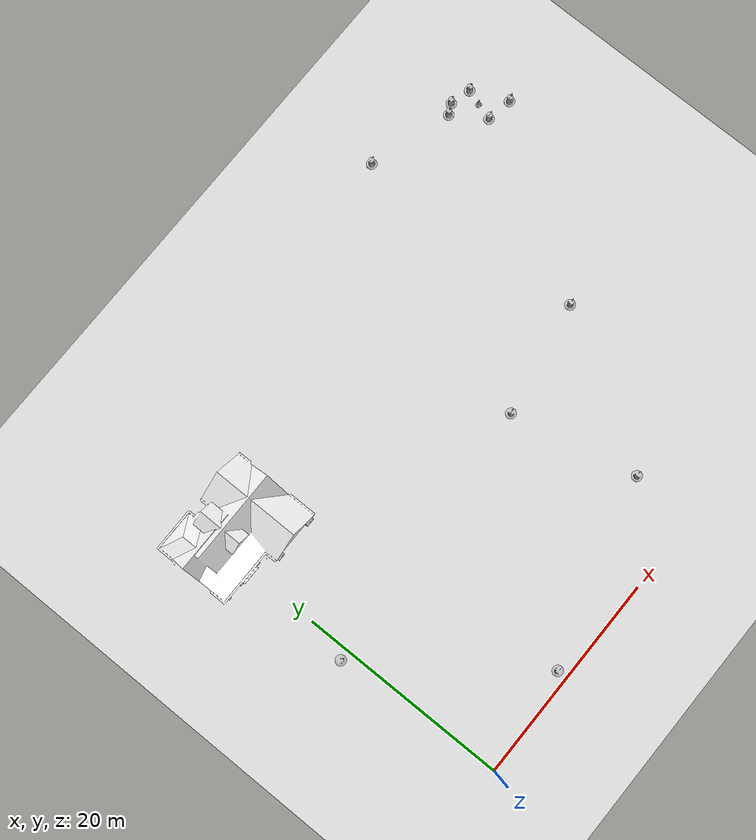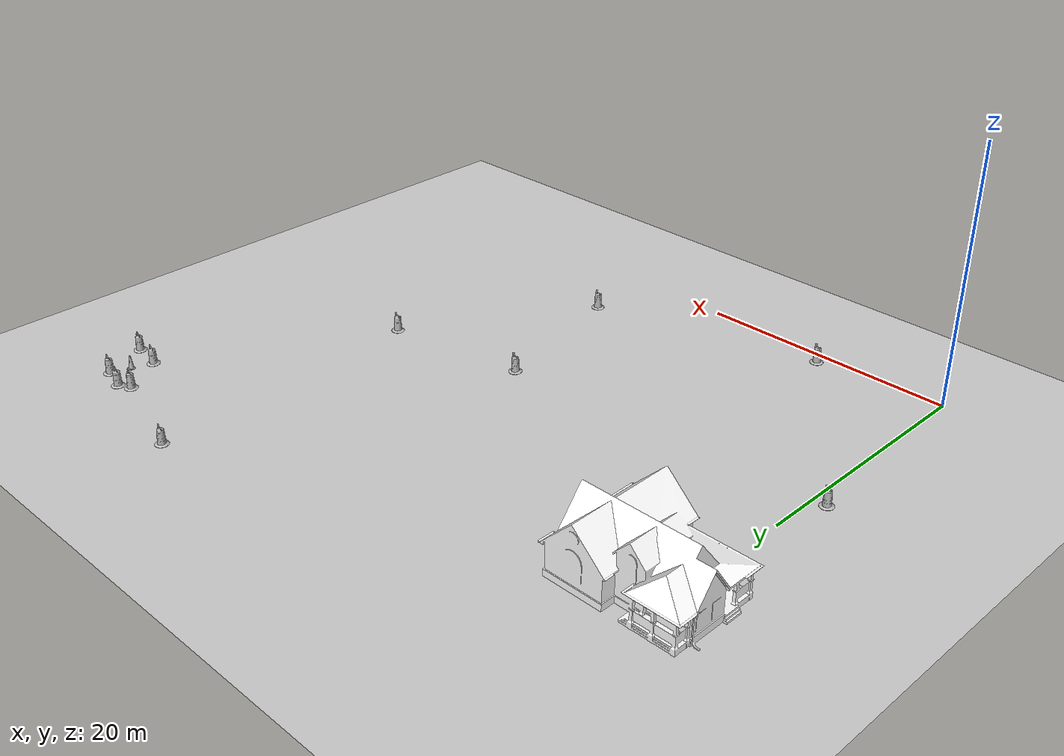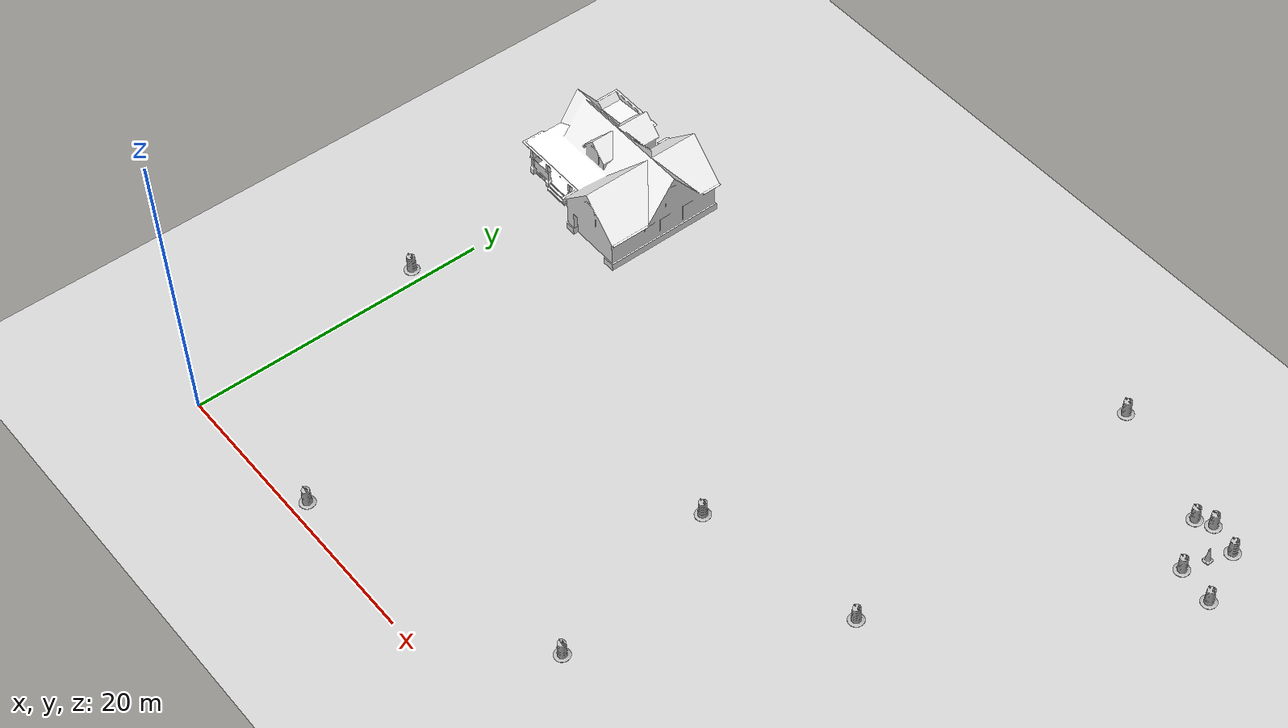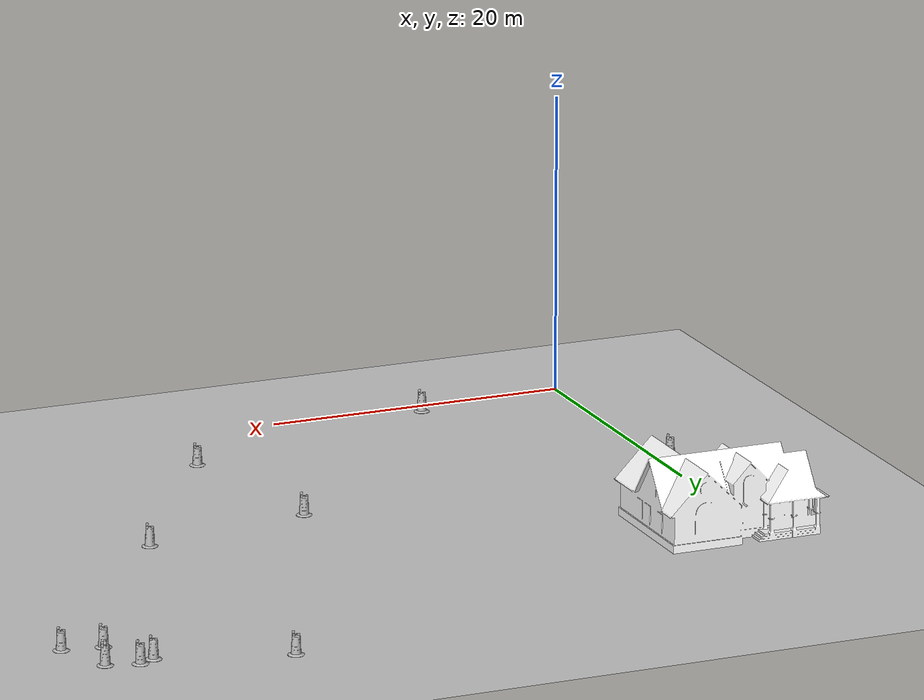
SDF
<sdf version="1.4">
 <world name="default">
  <model name="ground_plane">
   <static>1</static>
   <link name="link">
    <collision name="collision">
     <geometry><plane><normal>0 0 1</normal><size>100 100</size></plane></geometry>
     <surface><friction><ode><mu>100</mu><mu2>50</mu2></ode></friction></surface>
    </collision>
    <visual name="visual">
     <cast_shadows>0</cast_shadows>
     <geometry><plane><normal>0 0 1</normal><size>100 100</size></plane></geometry>
     <material>
      <script><uri>file://media/materials/scripts/gazebo.material</uri><name>Gazebo/Grey</name></script>
     </material>
    </visual>
    <velocity_decay><linear>0</linear><angular>0</angular></velocity_decay>
   </link>
  </model>
  <light name="sun" type="directional">
   <pose>0 0 10 0 -0 0</pose>
   <diffuse>0.8 0.8 0.8 1</diffuse>
   <specular>0.2 0.2 0.2 1</specular>
   <attenuation>
    <range>1000</range>
    <constant>0.9</constant>
    <linear>0.01</linear>
    <quadratic>0.001</quadratic>
   </attenuation>
   <direction>-0.5 0.1 -0.9</direction>
  </light>
  <physics type="ode">
   <max_step_size>0.001</max_step_size>
   <real_time_factor>1</real_time_factor>
   <real_time_update_rate>1000</real_time_update_rate>
   <gravity>0 0 -9.8</gravity>
  </physics>
  <scene><ambient>0.4 0.4 0.4 1</ambient><background>0.7 0.7 0.7 1</background><shadows>1</shadows></scene>
  <spherical_coordinates>
   <surface_model>EARTH_WGS84</surface_model>
   <latitude_deg>0</latitude_deg>
   <longitude_deg>0</longitude_deg>
   <elevation>0</elevation>
   <heading_deg>0</heading_deg>
  </spherical_coordinates>
  <model name="House 1">
   <static>1</static>
   <link name="link">
    <collision name="collision">
     <geometry><mesh><uri>model://house_1/meshes/house_1.dae</uri></mesh></geometry>
    </collision>
    <visual name="visual">
     <geometry><mesh><uri>model://house_1/meshes/house_1.dae</uri></mesh></geometry>
     <material>
      <script>
       <uri>model://house_1/materials/scripts</uri>
       <uri>model://house_1/materials/textures</uri>
       <name>House_1/Diffuse</name>
      </script>
      <shader type="normal_map_object_space"><normal_map>House_1_Normal.png</normal_map></shader>
     </material>
    </visual>
    <velocity_decay><linear>0</linear><angular>0</angular></velocity_decay>
   </link>
   <pose>2 30 0 0 -0 0</pose>
  </model>
  <model name="Construction Barrel_4">
   <link name="link">
    <inertial>
     <pose>0 0 0.4 0 -0 0</pose>
     <mass>500</mass>
     <inertia><ixx>51.2096</ixx><iyy>51.2096</iyy><izz>25</izz><ixy>0</ixy><ixz>0</ixz><iyz>0</iyz></inertia>
    </inertial>
    <collision name="collision">
     <geometry><mesh><uri>model://construction_barrel/meshes/construction_barrel.dae</uri></mesh></geometry>
    </collision>
    <visual name="visual">
     <geometry><mesh><uri>model://construction_barrel/meshes/construction_barrel.dae</uri></mesh></geometry>
    </visual>
    <velocity_decay><linear>0</linear><angular>0</angular></velocity_decay>
   </link>
   <pose>27.5749 6.00055 -1e-06 1e-06 -3e-06 -0.000991</pose>
   <static>0</static>
  </model>
  <model name="Construction Barrel_5">
   <link name="link">
    <inertial>
     <pose>0 0 0.4 0 -0 0</pose>
     <mass>500</mass>
     <inertia><ixx>51.2096</ixx><iyy>51.2096</iyy><izz>25</izz><ixy>0</ixy><ixz>0</ixz><iyz>0</iyz></inertia>
    </inertial>
    <collision name="collision">
     <geometry><mesh><uri>model://construction_barrel/meshes/construction_barrel.dae</uri></mesh></geometry>
    </collision>
    <visual name="visual">
     <geometry><mesh><uri>model://construction_barrel/meshes/construction_barrel.dae</uri></mesh></geometry>
    </visual>
    <velocity_decay><linear>0</linear><angular>0</angular></velocity_decay>
   </link>
   <pose>36 20.0006 -0 1e-06 1e-06 -0.000916</pose>
   <static>0</static>
  </model>
  <model name="Construction Barrel_6">
   <link name="link">
    <inertial>
     <pose>0 0 0.4 0 -0 0</pose>
     <mass>500</mass>
     <inertia><ixx>51.2096</ixx><iyy>51.2096</iyy><izz>25</izz><ixy>0</ixy><ixz>0</ixz><iyz>0</iyz></inertia>
    </inertial>
    <collision name="collision">
     <geometry><mesh><uri>model://construction_barrel/meshes/construction_barrel.dae</uri></mesh></geometry>
    </collision>
    <visual name="visual">
     <geometry><mesh><uri>model://construction_barrel/meshes/construction_barrel.dae</uri></mesh></geometry>
    </visual>
    <velocity_decay><linear>0</linear><angular>0</angular></velocity_decay>
   </link>
   <pose>-1.00006 16.0005 1e-06 -1e-06 -2e-06 -0.000885</pose>
   <static>0</static>
  </model>
  <model name="Construction Barrel_7">
   <link name="link">
    <inertial>
     <pose>0 0 0.4 0 -0 0</pose>
     <mass>500</mass>
     <inertia><ixx>51.2096</ixx><iyy>51.2096</iyy><izz>25</izz><ixy>0</ixy><ixz>0</ixz><iyz>0</iyz></inertia>
    </inertial>
    <collision name="collision">
     <geometry><mesh><uri>model://construction_barrel/meshes/construction_barrel.dae</uri></mesh></geometry>
    </collision>
    <visual name="visual">
     <geometry><mesh><uri>model://construction_barrel/meshes/construction_barrel.dae</uri></mesh></geometry>
    </visual>
    <velocity_decay><linear>0</linear><angular>0</angular></velocity_decay>
   </link>
   <pose>35 42.0005 2e-06 -3e-06 -3e-06 -0.000805</pose>
   <static>0</static>
  </model>
  <model name="Construction Barrel_8">
   <link name="link">
    <inertial>
     <pose>0 0 0.4 0 -0 0</pose>
     <mass>500</mass>
     <inertia><ixx>51.2096</ixx><iyy>51.2096</iyy><izz>25</izz><ixy>0</ixy><ixz>0</ixz><iyz>0</iyz></inertia>
    </inertial>
    <collision name="collision">
     <geometry><mesh><uri>model://construction_barrel/meshes/construction_barrel.dae</uri></mesh></geometry>
    </collision>
    <visual name="visual">
     <geometry><mesh><uri>model://construction_barrel/meshes/construction_barrel.dae</uri></mesh></geometry>
    </visual>
    <velocity_decay><linear>0</linear><angular>0</angular></velocity_decay>
   </link>
   <pose>9.99995 1.0004 2e-06 -3e-06 -3e-06 -0.000717</pose>
   <static>0</static>
  </model>
  <model name="Construction Barrel_9">
   <link name="link">
    <inertial>
     <pose>0 0 0.4 0 -0 0</pose>
     <mass>500</mass>
     <inertia><ixx>51.2096</ixx><iyy>51.2096</iyy><izz>25</izz><ixy>0</ixy><ixz>0</ixz><iyz>0</iyz></inertia>
    </inertial>
    <collision name="collision">
     <geometry><mesh><uri>model://construction_barrel/meshes/construction_barrel.dae</uri></mesh></geometry>
    </collision>
    <visual name="visual">
     <geometry><mesh><uri>model://construction_barrel/meshes/construction_barrel.dae</uri></mesh></geometry>
    </visual>
    <velocity_decay><linear>0</linear><angular>0</angular></velocity_decay>
   </link>
   <pose>25 18.0004 2e-06 -3e-06 -3e-06 -0.00068</pose>
   <static>0</static>
  </model>
  <model name="Construction Barrel">
   <link name="link">
    <inertial>
     <pose>0 0 0.4 0 -0 0</pose>
     <mass>500</mass>
     <inertia><ixx>51.2096</ixx><iyy>51.2096</iyy><izz>25</izz><ixy>0</ixy><ixz>0</ixz><iyz>0</iyz></inertia>
    </inertial>
    <collision name="collision">
     <geometry><mesh><uri>model://construction_barrel/meshes/construction_barrel.dae</uri></mesh></geometry>
    </collision>
    <visual name="visual">
     <geometry><mesh><uri>model://construction_barrel/meshes/construction_barrel.dae</uri></mesh></geometry>
    </visual>
    <velocity_decay><linear>0</linear><angular>0</angular></velocity_decay>
   </link>
   <pose>45 36.4118 -3e-06 3e-06 -6e-06 -0.000552</pose>
   <static>0</static>
  </model>
  <model name="Construction Barrel_0">
   <link name="link">
    <inertial>
     <pose>0 0 0.4 0 -0 0</pose>
     <mass>500</mass>
     <inertia><ixx>51.2096</ixx><iyy>51.2096</iyy><izz>25</izz><ixy>0</ixy><ixz>0</ixz><iyz>0</iyz></inertia>
    </inertial>
    <collision name="collision">
     <geometry><mesh><uri>model://construction_barrel/meshes/construction_barrel.dae</uri></mesh></geometry>
    </collision>
    <visual name="visual">
     <geometry><mesh><uri>model://construction_barrel/meshes/construction_barrel.dae</uri></mesh></geometry>
    </visual>
    <velocity_decay><linear>0</linear><angular>0</angular></velocity_decay>
   </link>
   <pose>47.4897 36.0003 -4e-06 9e-06 5e-06 -0.000496</pose>
   <static>0</static>
  </model>
  <model name="Construction Barrel_1">
   <link name="link">
    <inertial>
     <pose>0 0 0.4 0 -0 0</pose>
     <mass>500</mass>
     <inertia><ixx>51.2096</ixx><iyy>51.2096</iyy><izz>25</izz><ixy>0</ixy><ixz>0</ixz><iyz>0</iyz></inertia>
    </inertial>
    <collision name="collision">
     <geometry><mesh><uri>model://construction_barrel/meshes/construction_barrel.dae</uri></mesh></geometry>
    </collision>
    <visual name="visual">
     <geometry><mesh><uri>model://construction_barrel/meshes/construction_barrel.dae</uri></mesh></geometry>
    </visual>
    <velocity_decay><linear>0</linear><angular>0</angular></velocity_decay>
   </link>
   <pose>44 40.0003 -3e-06 0 -7e-06 -0.000439</pose>
   <static>0</static>
  </model>
  <model name="Construction Barrel_3">
   <link name="link">
    <inertial>
     <pose>0 0 0.4 0 -0 0</pose>
     <mass>500</mass>
     <inertia><ixx>51.2096</ixx><iyy>51.2096</iyy><izz>25</izz><ixy>0</ixy><ixz>0</ixz><iyz>0</iyz></inertia>
    </inertial>
    <collision name="collision">
     <geometry><mesh><uri>model://construction_barrel/meshes/construction_barrel.dae</uri></mesh></geometry>
    </collision>
    <visual name="visual">
     <geometry><mesh><uri>model://construction_barrel/meshes/construction_barrel.dae</uri></mesh></geometry>
    </visual>
    <velocity_decay><linear>0</linear><angular>0</angular></velocity_decay>
   </link>
   <pose>43 39.5047 -4e-06 9e-06 5e-06 -0.000185</pose>
   <static>0</static>
  </model>
  <model name="Construction Barrel_10">
   <link name="link">
    <inertial>
     <pose>0 0 0.4 0 -0 0</pose>
     <mass>500</mass>
     <inertia><ixx>51.2096</ixx><iyy>51.2096</iyy><izz>25</izz><ixy>0</ixy><ixz>0</ixz><iyz>0</iyz></inertia>
    </inertial>
    <collision name="collision">
     <geometry><mesh><uri>model://construction_barrel/meshes/construction_barrel.dae</uri></mesh></geometry>
    </collision>
    <visual name="visual">
     <geometry><mesh><uri>model://construction_barrel/meshes/construction_barrel.dae</uri></mesh></geometry>
    </visual>
    <velocity_decay><linear>0</linear><angular>0</angular></velocity_decay>
   </link>
   <pose>46 39.4629 -0 0 -0 -0.000121</pose>
   <static>0</static>
  </model>
  <model name="Construction Cone">
   <link name="link">
    <collision name="collision">
     <geometry>
      <mesh><scale>10 10 10</scale><uri>model://construction_cone/meshes/construction_cone.dae</uri></mesh>
     </geometry>
    </collision>
    <visual name="visual">
     <geometry>
      <mesh><scale>10 10 10</scale><uri>model://construction_cone/meshes/construction_cone.dae</uri></mesh>
     </geometry>
    </visual>
    <velocity_decay><linear>0</linear><angular>0</angular></velocity_decay>
    <inertial>
     <inertia><ixx>1</ixx><ixy>0</ixy><ixz>0</ixz><iyy>1</iyy><iyz>0</iyz><izz>1</izz></inertia>
     <mass>1</mass>
    </inertial>
   </link>
   <pose>45.4696 38 -1e-06 -2e-06 -0 -0</pose>
   <static>0</static>
  </model>
 </world>
</sdf>
